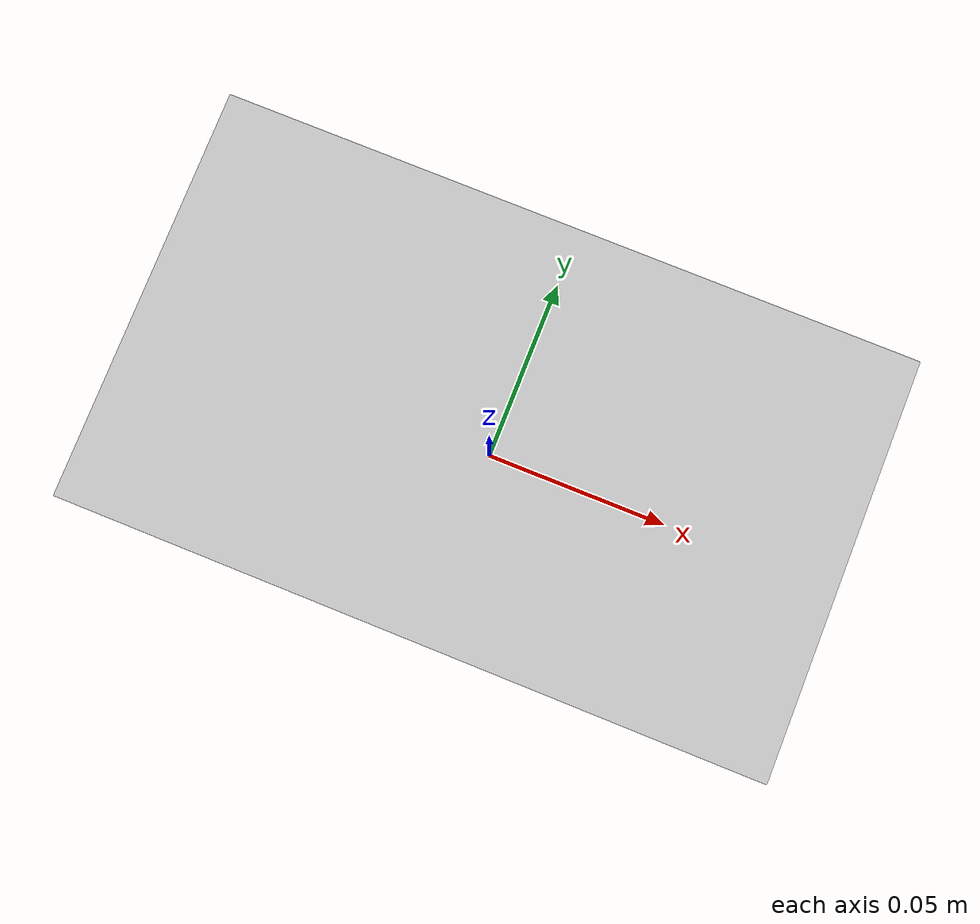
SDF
<?xml version="1.0" ?>
<sdf version="1.4">
  <model name="utl5_large">
    <static>true</static>
    <link name="link">
      <inertial>
        <mass>0.2</mass>
      </inertial>
      <collision name="collision">
        <pose>0.0 0.0 0.0 0 0.0 0.0</pose>
        <geometry>
          <mesh>
            <uri>model://utl5_large/meshes/utl5_large.dae</uri>
          </mesh>
        </geometry>
      </collision>
      <visual name="visual">
        <pose>0.0 0.0 0.0 0 0.0 0.0</pose>
        <geometry>
          <mesh>
            <uri>model://utl5_large/meshes/utl5_large.dae</uri>
          </mesh>
        </geometry>
      </visual>
    </link>
  </model>
</sdf>
